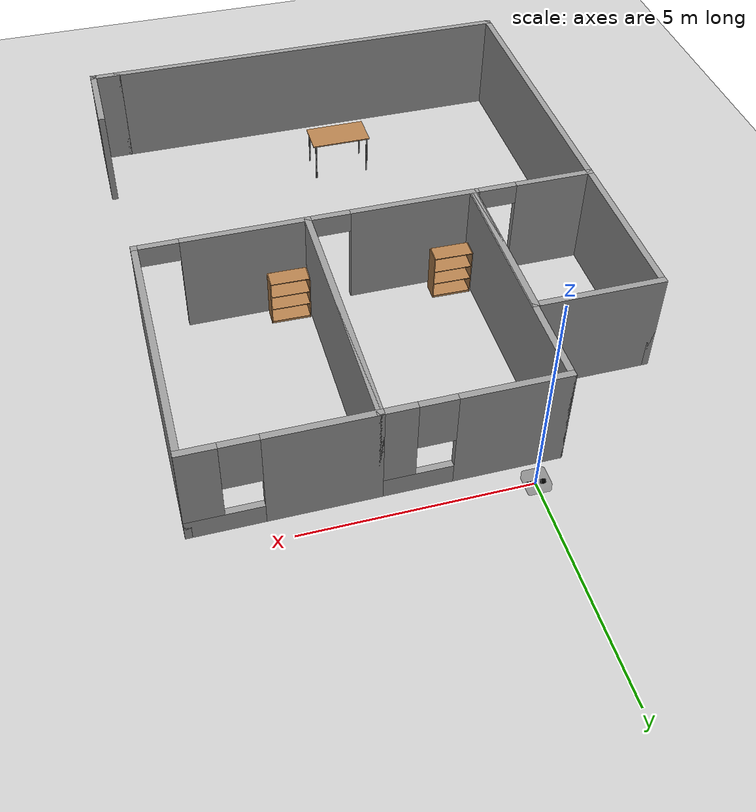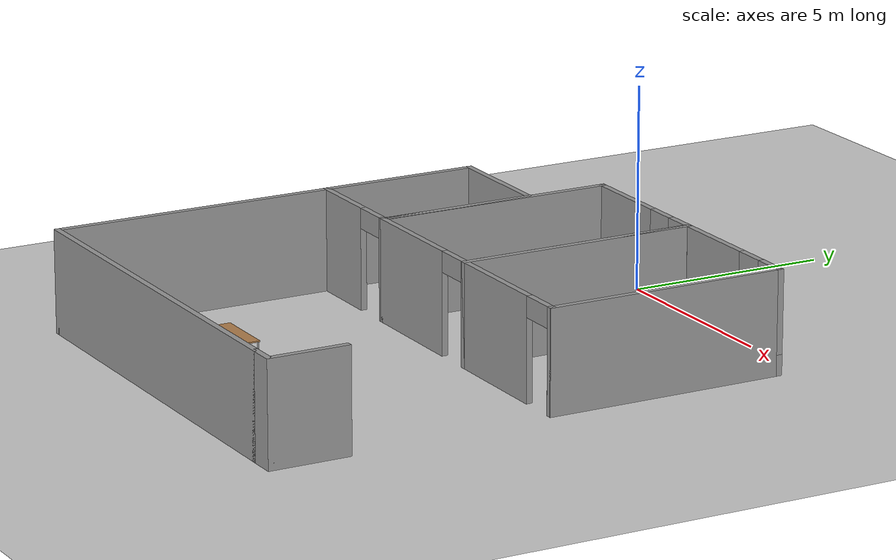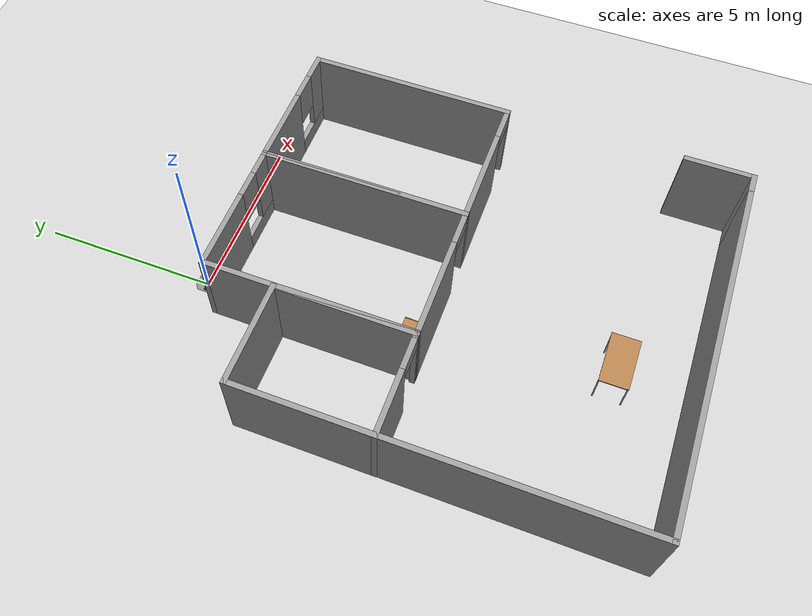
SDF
<sdf version="1.7">
 <world name="default">
  <light name="sun" type="directional">
   <pose>0 0 10 0 -0 0</pose>
   <diffuse>0.8 0.8 0.8 1</diffuse>
   <specular>0.2 0.2 0.2 1</specular>
   <attenuation>
    <range>1000</range>
    <constant>0.9</constant>
    <linear>0.01</linear>
    <quadratic>0.001</quadratic>
   </attenuation>
   <direction>-0.5 0.1 -0.9</direction>
   <spot><inner_angle>0</inner_angle><outer_angle>0</outer_angle><falloff>0</falloff></spot>
  </light>
  <model name="ground_plane">
   <static>1</static>
   <link name="link">
    <collision name="collision">
     <geometry><plane><normal>0 0 1</normal><size>100 100</size></plane></geometry>
     <surface><friction><ode><mu>100</mu><mu2>50</mu2></ode></friction></surface>
    </collision>
    <visual name="visual">
     <cast_shadows>0</cast_shadows>
     <geometry><plane><normal>0 0 1</normal><size>100 100</size></plane></geometry>
     <material>
      <script><uri>file://media/materials/scripts/gazebo.material</uri><name>Gazebo/Grey</name></script>
     </material>
    </visual>
   </link>
  </model>
  <gravity>0 0 -9.8</gravity>
  <magnetic_field>6e-06 2.3e-05 -4.2e-05</magnetic_field>
  <atmosphere type="adiabatic"/>
  <physics type="ode">
   <max_step_size>0.001</max_step_size>
   <real_time_factor>1</real_time_factor>
   <real_time_update_rate>1000</real_time_update_rate>
  </physics>
  <scene><ambient>0.4 0.4 0.4 1</ambient><background>0.7 0.7 0.7 1</background><shadows>1</shadows></scene>
  <spherical_coordinates>
   <surface_model>EARTH_WGS84</surface_model>
   <latitude_deg>0</latitude_deg>
   <longitude_deg>0</longitude_deg>
   <elevation>0</elevation>
   <heading_deg>0</heading_deg>
  </spherical_coordinates>
  <model name="room46">
   <pose>5.07987 -2.91429 0 0 -0 0</pose>
   <link name="Wall_0">
    <pose>0 2.3375 0 0 -0 0</pose>
    <visual name="Wall_0_Visual_0">
     <pose>-0.812335 0 1.25 0 -0 0</pose>
     <geometry><box><size>2.37533 0.15 2.5</size></box></geometry>
     <material>
      <script><uri>file://media/materials/scripts/gazebo.material</uri><name>Gazebo/Grey</name></script>
      <ambient>1 1 1 1</ambient>
     </material>
     <meta><layer>0</layer></meta>
    </visual>
    <collision name="Wall_0_Collision_0">
     <geometry><box><size>2.37533 0.15 2.5</size></box></geometry>
     <pose>-0.812335 0 1.25 0 -0 0</pose>
    </collision>
    <visual name="Wall_0_Visual_1">
     <pose>1.18766 0 0.25 0 -0 0</pose>
     <geometry><box><size>1.62467 0.15 0.5</size></box></geometry>
     <material>
      <script><uri>file://media/materials/scripts/gazebo.material</uri><name>Gazebo/Grey</name></script>
      <ambient>1 1 1 1</ambient>
     </material>
     <meta><layer>0</layer></meta>
    </visual>
    <collision name="Wall_0_Collision_1">
     <geometry><box><size>1.62467 0.15 0.5</size></box></geometry>
     <pose>1.18766 0 0.25 0 -0 0</pose>
    </collision>
    <visual name="Wall_0_Visual_2">
     <pose>1.58767 0 1.5 0 -0 0</pose>
     <geometry><box><size>0.82467 0.15 2</size></box></geometry>
     <material>
      <script><uri>file://media/materials/scripts/gazebo.material</uri><name>Gazebo/Grey</name></script>
      <ambient>1 1 1 1</ambient>
     </material>
     <meta><layer>0</layer></meta>
    </visual>
    <collision name="Wall_0_Collision_2">
     <geometry><box><size>0.82467 0.15 2</size></box></geometry>
     <pose>1.58767 0 1.5 0 -0 0</pose>
    </collision>
    <visual name="Wall_0_Visual_3">
     <pose>0.77533 0 1.9 0 -0 0</pose>
     <geometry><box><size>0.8 0.15 1.2</size></box></geometry>
     <material>
      <script><uri>file://media/materials/scripts/gazebo.material</uri><name>Gazebo/Grey</name></script>
      <ambient>1 1 1 1</ambient>
     </material>
     <meta><layer>0</layer></meta>
    </visual>
    <collision name="Wall_0_Collision_3">
     <geometry><box><size>0.8 0.15 1.2</size></box></geometry>
     <pose>0.77533 0 1.9 0 -0 0</pose>
    </collision>
   </link>
   <link name="Wall_3">
    <collision name="Wall_3_Collision">
     <geometry><box><size>6 0.15 2.5</size></box></geometry>
     <pose>0 0 1.25 0 -0 0</pose>
    </collision>
    <visual name="Wall_3_Visual">
     <pose>0 0 1.25 0 -0 0</pose>
     <geometry><box><size>6 0.15 2.5</size></box></geometry>
     <material>
      <script><uri>file://media/materials/scripts/gazebo.material</uri><name>Gazebo/Grey</name></script>
      <ambient>1 1 1 1</ambient>
     </material>
     <meta><layer>0</layer></meta>
    </visual>
    <pose>-1.925 -0.5875 0 0 -0 -1.5708</pose>
   </link>
   <link name="Wall_4">
    <pose>0 -3.5125 0 0 -0 0</pose>
    <visual name="Wall_4_Visual_0">
     <pose>-0.525556 0 1.25 0 -0 0</pose>
     <geometry><box><size>2.94889 0.15 2.5</size></box></geometry>
     <material>
      <script><uri>file://media/materials/scripts/gazebo.material</uri><name>Gazebo/Grey</name></script>
      <ambient>1 1 1 1</ambient>
     </material>
     <meta><layer>0</layer></meta>
    </visual>
    <collision name="Wall_4_Collision_0">
     <geometry><box><size>2.94889 0.15 2.5</size></box></geometry>
     <pose>-0.525556 0 1.25 0 -0 0</pose>
    </collision>
    <visual name="Wall_4_Visual_1">
     <pose>1.92444 0 1.25 0 -0 0</pose>
     <geometry><box><size>0.151112 0.15 2.5</size></box></geometry>
     <material>
      <script><uri>file://media/materials/scripts/gazebo.material</uri><name>Gazebo/Grey</name></script>
      <ambient>1 1 1 1</ambient>
     </material>
     <meta><layer>0</layer></meta>
    </visual>
    <collision name="Wall_4_Collision_1">
     <geometry><box><size>0.151112 0.15 2.5</size></box></geometry>
     <pose>1.92444 0 1.25 0 -0 0</pose>
    </collision>
    <visual name="Wall_4_Visual_2">
     <pose>1.39889 0 2.25 0 -0 0</pose>
     <geometry><box><size>0.9 0.15 0.5</size></box></geometry>
     <material>
      <script><uri>file://media/materials/scripts/gazebo.material</uri><name>Gazebo/Grey</name></script>
      <ambient>1 1 1 1</ambient>
     </material>
     <meta><layer>0</layer></meta>
    </visual>
    <collision name="Wall_4_Collision_2">
     <geometry><box><size>0.9 0.15 0.5</size></box></geometry>
     <pose>1.39889 0 2.25 0 -0 0</pose>
    </collision>
   </link>
   <link name="Wall_5">
    <collision name="Wall_5_Collision">
     <geometry><box><size>6 0.15 2.5</size></box></geometry>
     <pose>0 0 1.25 0 -0 0</pose>
    </collision>
    <visual name="Wall_5_Visual">
     <pose>0 0 1.25 0 -0 0</pose>
     <geometry><box><size>6 0.15 2.5</size></box></geometry>
     <material>
      <script><uri>file://media/materials/scripts/gazebo.material</uri><name>Gazebo/Grey</name></script>
      <ambient>1 1 1 1</ambient>
     </material>
     <meta><layer>0</layer></meta>
    </visual>
    <pose>1.925 -0.5875 0 0 -0 1.5708</pose>
   </link>
   <static>1</static>
  </model>
  <model name="room46_0">
   <pose>1.23244 -2.91575 0 0 -0 0</pose>
   <link name="Wall_0">
    <pose>0 2.3375 0 0 -0 0</pose>
    <visual name="Wall_0_Visual_0">
     <pose>-0.812335 0 1.25 0 -0 0</pose>
     <geometry><box><size>2.37533 0.15 2.5</size></box></geometry>
     <material>
      <script><uri>file://media/materials/scripts/gazebo.material</uri><name>Gazebo/Grey</name></script>
      <ambient>1 1 1 1</ambient>
     </material>
     <meta><layer>0</layer></meta>
    </visual>
    <collision name="Wall_0_Collision_0">
     <geometry><box><size>2.37533 0.15 2.5</size></box></geometry>
     <pose>-0.812335 0 1.25 0 -0 0</pose>
    </collision>
    <visual name="Wall_0_Visual_1">
     <pose>1.18766 0 0.25 0 -0 0</pose>
     <geometry><box><size>1.62467 0.15 0.5</size></box></geometry>
     <material>
      <script><uri>file://media/materials/scripts/gazebo.material</uri><name>Gazebo/Grey</name></script>
      <ambient>1 1 1 1</ambient>
     </material>
     <meta><layer>0</layer></meta>
    </visual>
    <collision name="Wall_0_Collision_1">
     <geometry><box><size>1.62467 0.15 0.5</size></box></geometry>
     <pose>1.18766 0 0.25 0 -0 0</pose>
    </collision>
    <visual name="Wall_0_Visual_2">
     <pose>1.58767 0 1.5 0 -0 0</pose>
     <geometry><box><size>0.82467 0.15 2</size></box></geometry>
     <material>
      <script><uri>file://media/materials/scripts/gazebo.material</uri><name>Gazebo/Grey</name></script>
      <ambient>1 1 1 1</ambient>
     </material>
     <meta><layer>0</layer></meta>
    </visual>
    <collision name="Wall_0_Collision_2">
     <geometry><box><size>0.82467 0.15 2</size></box></geometry>
     <pose>1.58767 0 1.5 0 -0 0</pose>
    </collision>
    <visual name="Wall_0_Visual_3">
     <pose>0.77533 0 1.9 0 -0 0</pose>
     <geometry><box><size>0.8 0.15 1.2</size></box></geometry>
     <material>
      <script><uri>file://media/materials/scripts/gazebo.material</uri><name>Gazebo/Grey</name></script>
      <ambient>1 1 1 1</ambient>
     </material>
     <meta><layer>0</layer></meta>
    </visual>
    <collision name="Wall_0_Collision_3">
     <geometry><box><size>0.8 0.15 1.2</size></box></geometry>
     <pose>0.77533 0 1.9 0 -0 0</pose>
    </collision>
   </link>
   <link name="Wall_3">
    <collision name="Wall_3_Collision">
     <geometry><box><size>6 0.15 2.5</size></box></geometry>
     <pose>0 0 1.25 0 -0 0</pose>
    </collision>
    <visual name="Wall_3_Visual">
     <pose>0 0 1.25 0 -0 0</pose>
     <geometry><box><size>6 0.15 2.5</size></box></geometry>
     <material>
      <script><uri>file://media/materials/scripts/gazebo.material</uri><name>Gazebo/Grey</name></script>
      <ambient>1 1 1 1</ambient>
     </material>
     <meta><layer>0</layer></meta>
    </visual>
    <pose>-1.925 -0.5875 0 0 -0 -1.5708</pose>
   </link>
   <link name="Wall_4">
    <pose>0 -3.5125 0 0 -0 0</pose>
    <visual name="Wall_4_Visual_0">
     <pose>-0.525556 0 1.25 0 -0 0</pose>
     <geometry><box><size>2.94889 0.15 2.5</size></box></geometry>
     <material>
      <script><uri>file://media/materials/scripts/gazebo.material</uri><name>Gazebo/Grey</name></script>
      <ambient>1 1 1 1</ambient>
     </material>
     <meta><layer>0</layer></meta>
    </visual>
    <collision name="Wall_4_Collision_0">
     <geometry><box><size>2.94889 0.15 2.5</size></box></geometry>
     <pose>-0.525556 0 1.25 0 -0 0</pose>
    </collision>
    <visual name="Wall_4_Visual_1">
     <pose>1.92444 0 1.25 0 -0 0</pose>
     <geometry><box><size>0.151112 0.15 2.5</size></box></geometry>
     <material>
      <script><uri>file://media/materials/scripts/gazebo.material</uri><name>Gazebo/Grey</name></script>
      <ambient>1 1 1 1</ambient>
     </material>
     <meta><layer>0</layer></meta>
    </visual>
    <collision name="Wall_4_Collision_1">
     <geometry><box><size>0.151112 0.15 2.5</size></box></geometry>
     <pose>1.92444 0 1.25 0 -0 0</pose>
    </collision>
    <visual name="Wall_4_Visual_2">
     <pose>1.39889 0 2.25 0 -0 0</pose>
     <geometry><box><size>0.9 0.15 0.5</size></box></geometry>
     <material>
      <script><uri>file://media/materials/scripts/gazebo.material</uri><name>Gazebo/Grey</name></script>
      <ambient>1 1 1 1</ambient>
     </material>
     <meta><layer>0</layer></meta>
    </visual>
    <collision name="Wall_4_Collision_2">
     <geometry><box><size>0.9 0.15 0.5</size></box></geometry>
     <pose>1.39889 0 2.25 0 -0 0</pose>
    </collision>
   </link>
   <link name="Wall_5">
    <collision name="Wall_5_Collision">
     <geometry><box><size>6 0.15 2.5</size></box></geometry>
     <pose>0 0 1.25 0 -0 0</pose>
    </collision>
    <visual name="Wall_5_Visual">
     <pose>0 0 1.25 0 -0 0</pose>
     <geometry><box><size>6 0.15 2.5</size></box></geometry>
     <material>
      <script><uri>file://media/materials/scripts/gazebo.material</uri><name>Gazebo/Grey</name></script>
      <ambient>1 1 1 1</ambient>
     </material>
     <meta><layer>0</layer></meta>
    </visual>
    <pose>1.925 -0.5875 0 0 -0 1.5708</pose>
   </link>
   <static>1</static>
  </model>
  <model name="room">
   <pose>-1.94135 -4.04708 0 0 -0 0</pose>
   <link name="Wall_0">
    <collision name="Wall_0_Collision">
     <geometry><box><size>3 0.15 2.5</size></box></geometry>
     <pose>0 0 1.25 0 -0 0</pose>
    </collision>
    <visual name="Wall_0_Visual">
     <pose>0 0 1.25 0 -0 0</pose>
     <geometry><box><size>3 0.15 2.5</size></box></geometry>
     <material>
      <script><uri>file://media/materials/scripts/gazebo.material</uri><name>Gazebo/Grey</name></script>
      <ambient>1 1 1 1</ambient>
     </material>
     <meta><layer>0</layer></meta>
    </visual>
    <pose>-0.2025 1.4725 0 0 -0 0</pose>
   </link>
   <link name="Wall_1">
    <collision name="Wall_1_Collision">
     <geometry><box><size>4 0.15 2.5</size></box></geometry>
     <pose>0 0 1.25 0 -0 0</pose>
    </collision>
    <visual name="Wall_1_Visual">
     <pose>0 0 1.25 0 -0 0</pose>
     <geometry><box><size>4 0.15 2.5</size></box></geometry>
     <material>
      <script><uri>file://media/materials/scripts/gazebo.material</uri><name>Gazebo/Grey</name></script>
      <ambient>1 1 1 1</ambient>
     </material>
     <meta><layer>0</layer></meta>
    </visual>
    <pose>1.2225 -0.4525 0 0 -0 -1.5708</pose>
   </link>
   <link name="Wall_2">
    <pose>-0.2025 -2.3775 0 0 -0 3.14159</pose>
    <visual name="Wall_2_Visual_0">
     <pose>-1.3975 0 1.25 0 -0 0</pose>
     <geometry><box><size>0.205 0.15 2.5</size></box></geometry>
     <material>
      <script><uri>file://media/materials/scripts/gazebo.material</uri><name>Gazebo/Grey</name></script>
      <ambient>1 1 1 1</ambient>
     </material>
     <meta><layer>0</layer></meta>
    </visual>
    <collision name="Wall_2_Collision_0">
     <geometry><box><size>0.205 0.15 2.5</size></box></geometry>
     <pose>-1.3975 0 1.25 0 -0 0</pose>
    </collision>
    <visual name="Wall_2_Visual_1">
     <pose>0.5525 0 1.25 0 -0 0</pose>
     <geometry><box><size>1.895 0.15 2.5</size></box></geometry>
     <material>
      <script><uri>file://media/materials/scripts/gazebo.material</uri><name>Gazebo/Grey</name></script>
      <ambient>1 1 1 1</ambient>
     </material>
     <meta><layer>0</layer></meta>
    </visual>
    <collision name="Wall_2_Collision_1">
     <geometry><box><size>1.895 0.15 2.5</size></box></geometry>
     <pose>0.5525 0 1.25 0 -0 0</pose>
    </collision>
    <visual name="Wall_2_Visual_2">
     <pose>-0.845 0 2.25 0 -0 0</pose>
     <geometry><box><size>0.9 0.15 0.5</size></box></geometry>
     <material>
      <script><uri>file://media/materials/scripts/gazebo.material</uri><name>Gazebo/Grey</name></script>
      <ambient>1 1 1 1</ambient>
     </material>
     <meta><layer>0</layer></meta>
    </visual>
    <collision name="Wall_2_Collision_2">
     <geometry><box><size>0.9 0.15 0.5</size></box></geometry>
     <pose>-0.845 0 2.25 0 -0 0</pose>
    </collision>
   </link>
   <link name="Wall_3">
    <collision name="Wall_3_Collision">
     <geometry><box><size>4 0.15 2.5</size></box></geometry>
     <pose>0 0 1.25 0 -0 0</pose>
    </collision>
    <visual name="Wall_3_Visual">
     <pose>0 0 1.25 0 -0 0</pose>
     <geometry><box><size>4 0.15 2.5</size></box></geometry>
     <material>
      <script><uri>file://media/materials/scripts/gazebo.material</uri><name>Gazebo/Grey</name></script>
      <ambient>1 1 1 1</ambient>
     </material>
     <meta><layer>0</layer></meta>
    </visual>
    <pose>-1.6275 -0.4525 0 0 -0 1.5708</pose>
   </link>
   <static>1</static>
  </model>
  <model name="Table">
   <static>1</static>
   <link name="link">
    <collision name="surface">
     <pose>0 0 1 0 -0 0</pose>
     <geometry><box><size>1.5 0.8 0.03</size></box></geometry>
     <surface><friction><ode><mu>0.6</mu><mu2>0.6</mu2></ode></friction></surface>
    </collision>
    <visual name="visual1">
     <pose>0 0 1 0 -0 0</pose>
     <geometry><box><size>1.5 0.8 0.03</size></box></geometry>
     <material>
      <diffuse>1 1 1 1</diffuse>
      <script><uri>file://media/materials/scripts/gazebo.material</uri><name>Gazebo/Wood</name></script>
      <pbr>
       <metal>
        <albedo_map>https://fuel.ignitionrobotics.org/1.0/openrobotics/models/table/3/files/Table_Diffuse.jpg</albedo_map>
       </metal>
      </pbr>
     </material>
    </visual>
    <collision name="front_left_leg">
     <pose>0.68 0.38 0.5 0 -0 0</pose>
     <geometry><cylinder><radius>0.02</radius><length>1</length></cylinder></geometry>
    </collision>
    <visual name="front_left_leg">
     <pose>0.68 0.38 0.5 0 -0 0</pose>
     <geometry><cylinder><radius>0.02</radius><length>1</length></cylinder></geometry>
     <material>
      <diffuse>0.5 0.5 0.5 1</diffuse>
      <script><uri>file://media/materials/scripts/gazebo.material</uri><name>Gazebo/Grey</name></script>
     </material>
    </visual>
    <collision name="front_right_leg">
     <pose>0.68 -0.38 0.5 0 -0 0</pose>
     <geometry><cylinder><radius>0.02</radius><length>1</length></cylinder></geometry>
    </collision>
    <visual name="front_right_leg">
     <pose>0.68 -0.38 0.5 0 -0 0</pose>
     <geometry><cylinder><radius>0.02</radius><length>1</length></cylinder></geometry>
     <material>
      <diffuse>0.5 0.5 0.5 1</diffuse>
      <script><uri>file://media/materials/scripts/gazebo.material</uri><name>Gazebo/Grey</name></script>
     </material>
    </visual>
    <collision name="back_right_leg">
     <pose>-0.68 -0.38 0.5 0 -0 0</pose>
     <geometry><cylinder><radius>0.02</radius><length>1</length></cylinder></geometry>
    </collision>
    <visual name="back_right_leg">
     <pose>-0.68 -0.38 0.5 0 -0 0</pose>
     <geometry><cylinder><radius>0.02</radius><length>1</length></cylinder></geometry>
     <material>
      <diffuse>0.5 0.5 0.5 1</diffuse>
      <script><uri>file://media/materials/scripts/gazebo.material</uri><name>Gazebo/Grey</name></script>
     </material>
    </visual>
    <collision name="back_left_leg">
     <pose>-0.68 0.38 0.5 0 -0 0</pose>
     <geometry><cylinder><radius>0.02</radius><length>1</length></cylinder></geometry>
    </collision>
    <visual name="back_left_leg">
     <pose>-0.68 0.38 0.5 0 -0 0</pose>
     <geometry><cylinder><radius>0.02</radius><length>1</length></cylinder></geometry>
     <material>
      <diffuse>0.5 0.5 0.5 1</diffuse>
      <script><uri>file://media/materials/scripts/gazebo.material</uri><name>Gazebo/Grey</name></script>
     </material>
    </visual>
   </link>
   <pose>1.18939 -11.383 0 0 -0 0</pose>
  </model>
  <model name="Bookshelf">
   <static>1</static>
   <link name="link">
    <inertial><mass>1</mass></inertial>
    <collision name="back">
     <pose>0 0.005 0.6 0 -0 0</pose>
     <geometry><box><size>0.9 0.01 1.2</size></box></geometry>
    </collision>
    <visual name="visual1">
     <pose>0 0.005 0.6 0 -0 0</pose>
     <geometry><box><size>0.9 0.01 1.2</size></box></geometry>
     <material>
      <diffuse>1 1 1 1</diffuse>
      <script><uri>file://media/materials/scripts/gazebo.material</uri><name>Gazebo/Wood</name></script>
      <pbr>
       <metal>
        <albedo_map>https://fuel.ignitionrobotics.org/1.0/openrobotics/models/bookshelf/3/files/bookshelf_diffuse.jpg</albedo_map>
       </metal>
      </pbr>
     </material>
    </visual>
    <collision name="left_side">
     <pose>0.45 -0.195 0.6 0 -0 0</pose>
     <geometry><box><size>0.02 0.4 1.2</size></box></geometry>
    </collision>
    <visual name="visual2">
     <pose>0.45 -0.195 0.6 0 -0 0</pose>
     <geometry><box><size>0.02 0.4 1.2</size></box></geometry>
     <material>
      <diffuse>1 1 1 1</diffuse>
      <script><uri>file://media/materials/scripts/gazebo.material</uri><name>Gazebo/Wood</name></script>
      <pbr>
       <metal>
        <albedo_map>https://fuel.ignitionrobotics.org/1.0/openrobotics/models/bookshelf/3/files/bookshelf_diffuse.jpg</albedo_map>
       </metal>
      </pbr>
     </material>
    </visual>
    <collision name="right_side">
     <pose>-0.45 -0.195 0.6 0 -0 0</pose>
     <geometry><box><size>0.02 0.4 1.2</size></box></geometry>
    </collision>
    <visual name="visual3">
     <pose>-0.45 -0.195 0.6 0 -0 0</pose>
     <geometry><box><size>0.02 0.4 1.2</size></box></geometry>
     <material>
      <diffuse>1 1 1 1</diffuse>
      <script><uri>file://media/materials/scripts/gazebo.material</uri><name>Gazebo/Wood</name></script>
      <pbr>
       <metal>
        <albedo_map>https://fuel.ignitionrobotics.org/1.0/openrobotics/models/bookshelf/3/files/bookshelf_diffuse.jpg</albedo_map>
       </metal>
      </pbr>
     </material>
    </visual>
    <collision name="bottom">
     <pose>0 -0.195 0.03 0 -0 0</pose>
     <geometry><box><size>0.88 0.4 0.06</size></box></geometry>
    </collision>
    <visual name="visual4">
     <pose>0 -0.195 0.03 0 -0 0</pose>
     <geometry><box><size>0.88 0.4 0.06</size></box></geometry>
     <material>
      <diffuse>1 1 1 1</diffuse>
      <script><uri>file://media/materials/scripts/gazebo.material</uri><name>Gazebo/Wood</name></script>
      <pbr>
       <metal>
        <albedo_map>https://fuel.ignitionrobotics.org/1.0/openrobotics/models/bookshelf/3/files/bookshelf_diffuse.jpg</albedo_map>
       </metal>
      </pbr>
     </material>
    </visual>
    <collision name="top">
     <pose>0 -0.195 1.19 0 -0 0</pose>
     <geometry><box><size>0.88 0.4 0.02</size></box></geometry>
    </collision>
    <visual name="visual5">
     <pose>0 -0.195 1.19 0 -0 0</pose>
     <geometry><box><size>0.88 0.4 0.02</size></box></geometry>
     <material>
      <diffuse>1 1 1 1</diffuse>
      <script><uri>file://media/materials/scripts/gazebo.material</uri><name>Gazebo/Wood</name></script>
      <pbr>
       <metal>
        <albedo_map>https://fuel.ignitionrobotics.org/1.0/openrobotics/models/bookshelf/3/files/bookshelf_diffuse.jpg</albedo_map>
       </metal>
      </pbr>
     </material>
    </visual>
    <collision name="low_shelf">
     <pose>0 -0.195 0.43 0 -0 0</pose>
     <geometry><box><size>0.88 0.4 0.02</size></box></geometry>
    </collision>
    <visual name="visual6">
     <pose>0 -0.195 0.43 0 -0 0</pose>
     <geometry><box><size>0.88 0.4 0.02</size></box></geometry>
     <material>
      <diffuse>1 1 1 1</diffuse>
      <script><uri>file://media/materials/scripts/gazebo.material</uri><name>Gazebo/Wood</name></script>
      <pbr>
       <metal>
        <albedo_map>https://fuel.ignitionrobotics.org/1.0/openrobotics/models/bookshelf/3/files/bookshelf_diffuse.jpg</albedo_map>
       </metal>
      </pbr>
     </material>
    </visual>
    <collision name="high_shelf">
     <pose>0 -0.195 0.8 0 -0 0</pose>
     <geometry><box><size>0.88 0.4 0.02</size></box></geometry>
    </collision>
    <visual name="visual7">
     <pose>0 -0.195 0.8 0 -0 0</pose>
     <geometry><box><size>0.88 0.4 0.02</size></box></geometry>
     <material>
      <diffuse>1 1 1 1</diffuse>
      <script><uri>file://media/materials/scripts/gazebo.material</uri><name>Gazebo/Wood</name></script>
      <pbr>
       <metal>
        <albedo_map>https://fuel.ignitionrobotics.org/1.0/openrobotics/models/bookshelf/3/files/bookshelf_diffuse.jpg</albedo_map>
       </metal>
      </pbr>
     </material>
    </visual>
   </link>
   <pose>-0.132493 -6.17476 0 0 -0 3.12322</pose>
  </model>
  <model name="Bookshelf_clone">
   <static>1</static>
   <link name="link">
    <inertial><mass>1</mass></inertial>
    <collision name="back">
     <pose>0 0.005 0.6 0 -0 0</pose>
     <geometry><box><size>0.9 0.01 1.2</size></box></geometry>
    </collision>
    <visual name="visual1">
     <pose>0 0.005 0.6 0 -0 0</pose>
     <geometry><box><size>0.9 0.01 1.2</size></box></geometry>
     <material>
      <diffuse>1 1 1 1</diffuse>
      <script><uri>file://media/materials/scripts/gazebo.material</uri><name>Gazebo/Wood</name></script>
      <pbr>
       <metal>
        <albedo_map>https://fuel.ignitionrobotics.org/1.0/openrobotics/models/bookshelf/3/files/bookshelf_diffuse.jpg</albedo_map>
       </metal>
      </pbr>
     </material>
    </visual>
    <collision name="left_side">
     <pose>0.45 -0.195 0.6 0 -0 0</pose>
     <geometry><box><size>0.02 0.4 1.2</size></box></geometry>
    </collision>
    <visual name="visual2">
     <pose>0.45 -0.195 0.6 0 -0 0</pose>
     <geometry><box><size>0.02 0.4 1.2</size></box></geometry>
     <material>
      <diffuse>1 1 1 1</diffuse>
      <script><uri>file://media/materials/scripts/gazebo.material</uri><name>Gazebo/Wood</name></script>
      <pbr>
       <metal>
        <albedo_map>https://fuel.ignitionrobotics.org/1.0/openrobotics/models/bookshelf/3/files/bookshelf_diffuse.jpg</albedo_map>
       </metal>
      </pbr>
     </material>
    </visual>
    <collision name="right_side">
     <pose>-0.45 -0.195 0.6 0 -0 0</pose>
     <geometry><box><size>0.02 0.4 1.2</size></box></geometry>
    </collision>
    <visual name="visual3">
     <pose>-0.45 -0.195 0.6 0 -0 0</pose>
     <geometry><box><size>0.02 0.4 1.2</size></box></geometry>
     <material>
      <diffuse>1 1 1 1</diffuse>
      <script><uri>file://media/materials/scripts/gazebo.material</uri><name>Gazebo/Wood</name></script>
      <pbr>
       <metal>
        <albedo_map>https://fuel.ignitionrobotics.org/1.0/openrobotics/models/bookshelf/3/files/bookshelf_diffuse.jpg</albedo_map>
       </metal>
      </pbr>
     </material>
    </visual>
    <collision name="bottom">
     <pose>0 -0.195 0.03 0 -0 0</pose>
     <geometry><box><size>0.88 0.4 0.06</size></box></geometry>
    </collision>
    <visual name="visual4">
     <pose>0 -0.195 0.03 0 -0 0</pose>
     <geometry><box><size>0.88 0.4 0.06</size></box></geometry>
     <material>
      <diffuse>1 1 1 1</diffuse>
      <script><uri>file://media/materials/scripts/gazebo.material</uri><name>Gazebo/Wood</name></script>
      <pbr>
       <metal>
        <albedo_map>https://fuel.ignitionrobotics.org/1.0/openrobotics/models/bookshelf/3/files/bookshelf_diffuse.jpg</albedo_map>
       </metal>
      </pbr>
     </material>
    </visual>
    <collision name="top">
     <pose>0 -0.195 1.19 0 -0 0</pose>
     <geometry><box><size>0.88 0.4 0.02</size></box></geometry>
    </collision>
    <visual name="visual5">
     <pose>0 -0.195 1.19 0 -0 0</pose>
     <geometry><box><size>0.88 0.4 0.02</size></box></geometry>
     <material>
      <diffuse>1 1 1 1</diffuse>
      <script><uri>file://media/materials/scripts/gazebo.material</uri><name>Gazebo/Wood</name></script>
      <pbr>
       <metal>
        <albedo_map>https://fuel.ignitionrobotics.org/1.0/openrobotics/models/bookshelf/3/files/bookshelf_diffuse.jpg</albedo_map>
       </metal>
      </pbr>
     </material>
    </visual>
    <collision name="low_shelf">
     <pose>0 -0.195 0.43 0 -0 0</pose>
     <geometry><box><size>0.88 0.4 0.02</size></box></geometry>
    </collision>
    <visual name="visual6">
     <pose>0 -0.195 0.43 0 -0 0</pose>
     <geometry><box><size>0.88 0.4 0.02</size></box></geometry>
     <material>
      <diffuse>1 1 1 1</diffuse>
      <script><uri>file://media/materials/scripts/gazebo.material</uri><name>Gazebo/Wood</name></script>
      <pbr>
       <metal>
        <albedo_map>https://fuel.ignitionrobotics.org/1.0/openrobotics/models/bookshelf/3/files/bookshelf_diffuse.jpg</albedo_map>
       </metal>
      </pbr>
     </material>
    </visual>
    <collision name="high_shelf">
     <pose>0 -0.195 0.8 0 -0 0</pose>
     <geometry><box><size>0.88 0.4 0.02</size></box></geometry>
    </collision>
    <visual name="visual7">
     <pose>0 -0.195 0.8 0 -0 0</pose>
     <geometry><box><size>0.88 0.4 0.02</size></box></geometry>
     <material>
      <diffuse>1 1 1 1</diffuse>
      <script><uri>file://media/materials/scripts/gazebo.material</uri><name>Gazebo/Wood</name></script>
      <pbr>
       <metal>
        <albedo_map>https://fuel.ignitionrobotics.org/1.0/openrobotics/models/bookshelf/3/files/bookshelf_diffuse.jpg</albedo_map>
       </metal>
      </pbr>
     </material>
    </visual>
   </link>
   <pose>3.70483 -6.30006 0 0 -0 3.12322</pose>
  </model>
  <model name="wall">
   <pose>1.78751 -8.76188 0 0 -0 0</pose>
   <link name="Wall_1">
    <collision name="Wall_1_Collision">
     <geometry><box><size>7 0.15 2.5</size></box></geometry>
     <pose>0 0 1.25 0 -0 0</pose>
    </collision>
    <visual name="Wall_1_Visual">
     <pose>0 0 1.25 0 -0 0</pose>
     <geometry><box><size>7 0.15 2.5</size></box></geometry>
     <material>
      <script><uri>file://media/materials/scripts/gazebo.material</uri><name>Gazebo/Grey</name></script>
      <ambient>1 1 1 1</ambient>
     </material>
     <meta><layer>0</layer></meta>
    </visual>
    <pose>-5.35 -1.18692 0 0 -0 -1.5708</pose>
   </link>
   <link name="Wall_13">
    <collision name="Wall_13_Collision">
     <geometry><box><size>2 0.15 2.5</size></box></geometry>
     <pose>0 0 1.25 0 -0 0</pose>
    </collision>
    <visual name="Wall_13_Visual">
     <pose>0 0 1.25 0 -0 0</pose>
     <geometry><box><size>2 0.15 2.5</size></box></geometry>
     <material>
      <script><uri>file://media/materials/scripts/gazebo.material</uri><name>Gazebo/Grey</name></script>
      <ambient>1 1 1 1</ambient>
     </material>
     <meta><layer>0</layer></meta>
    </visual>
    <pose>5.35 -3.68692 0 0 -0 1.5708</pose>
   </link>
   <link name="Wall_3">
    <collision name="Wall_3_Collision">
     <geometry><box><size>10.25 0.15 2.5</size></box></geometry>
     <pose>0 0 1.25 0 -0 0</pose>
    </collision>
    <visual name="Wall_3_Visual">
     <pose>0 0 1.25 0 -0 0</pose>
     <geometry><box><size>10.25 0.15 2.5</size></box></geometry>
     <material>
      <script><uri>file://media/materials/scripts/gazebo.material</uri><name>Gazebo/Grey</name></script>
      <ambient>1 1 1 1</ambient>
     </material>
     <meta><layer>0</layer></meta>
    </visual>
    <pose>-0.3 -4.61192 0 0 -0 0</pose>
   </link>
   <link name="Wall_4">
    <collision name="Wall_4_Collision">
     <geometry><box><size>0.15 0.15 2.5</size></box></geometry>
     <pose>0 0 1.25 0 -0 0</pose>
    </collision>
    <visual name="Wall_4_Visual">
     <pose>0 0 1.25 0 -0 0</pose>
     <geometry><box><size>0.15 0.15 2.5</size></box></geometry>
     <material>
      <script><uri>file://media/materials/scripts/gazebo.material</uri><name>Gazebo/Grey</name></script>
      <ambient>1 1 1 1</ambient>
     </material>
     <meta><layer>0</layer></meta>
    </visual>
    <pose>4.75 -4.61192 0 0 -0 0</pose>
   </link>
   <link name="Wall_5">
    <collision name="Wall_5_Collision">
     <geometry><box><size>0.75 0.15 2.5</size></box></geometry>
     <pose>0 0 1.25 0 -0 0</pose>
    </collision>
    <visual name="Wall_5_Visual">
     <pose>0 0 1.25 0 -0 0</pose>
     <geometry><box><size>0.75 0.15 2.5</size></box></geometry>
     <material>
      <script><uri>file://media/materials/scripts/gazebo.material</uri><name>Gazebo/Grey</name></script>
      <ambient>1 1 1 1</ambient>
     </material>
     <meta><layer>0</layer></meta>
    </visual>
    <pose>5.05 -4.61192 0 0 -0 0</pose>
   </link>
   <static>1</static>
  </model>
  <include><uri>model://first_model</uri></include>
 </world>
</sdf>

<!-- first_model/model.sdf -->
<sdf version="1.7">

  <model name='Ummannd_Car'>
  <static>false</static>

  <link name='car'>

    <inertial>
      <mass>15</mass>
      <inertia>
        <ixx>0.126164</ixx>
        <ixy>0</ixy>
        <ixz>0</ixz>
        <iyy>0.416519</iyy>
        <iyz>0</iyz>
        <izz>0.481014</izz>
        </inertia>
    </inertial>

    <pose>0 0 0.02 0 0 0</pose>

    <collision name='car_collision'>

      <geometry>
        <mesh>
          <uri>model://first_model/meshes/body.dae</uri>
          <scale>1 1 1</scale>
        </mesh>
      </geometry>

    </collision>

    <visual name='car_visual'>

      <geometry>
        <mesh>
          <uri>model://first_model/meshes/body.dae</uri>
          <scale>1 1 1</scale>
        </mesh>
      </geometry>

      <material>
        <ambient>0 0 0 0.1</ambient>
        <diffuse>0 0 0 0.3</diffuse>
        <specular>0 0 0 0</specular>
        <emissive>0 0 0 0</emissive>
      </material>

    </visual>

  </link>

  <link name='back_left_wheel'>

    <inertial>
      <mass>1</mass>
      <inertia>
        <ixx>0.145833</ixx>
        <ixy>0</ixy>
        <ixz>0</ixz>
        <iyy>0.145833</iyy>
        <iyz>0</iyz>
        <izz>0.125</izz>
      </inertia>
    </inertial>

    <collision name='back_left_wheel_collision'>

      <pose>-0.15 -0.15 0 0 0 1.5708</pose>

      <geometry>
        <mesh>
          <uri>model://first_model/meshes/wheel.dae</uri>
          <scale>1 1 1</scale>>
        </mesh>
      </geometry>

    <surface>

      <friction>
        <ode>
          <mu>1</mu>
          <mu2>1</mu2>
          <slip1>0</slip1>
          <slip2>0</slip2>
        </ode>
      </friction>

      <contact>
        <ode>
          <soft_cfm>0</soft_cfm>
          <soft_erp>0.2</soft_erp>
          <kp>1e+13</kp>
          <kd>1</kd>
          <max_vel>0.01</max_vel>
          <min_depth>0.01</min_depth>
        </ode>
      </contact>

    </surface>

    </collision>

    <visual name='back_left_visual'>

      <pose>-0.15 -0.15 0 0 0 1.5708</pose>

      <geometry>
        <mesh>
          <uri>model://first_model/meshes/wheel.dae</uri>
          <scale>1 1 1</scale>>
        </mesh>
      </geometry>

      <material>
        <ambient>0 0 0 1</ambient>
        <diffuse>0 0 0 0.3</diffuse>
        <specular>0 0 0 0.3</specular>
        <emissive>0.3 0 0 0.3</emissive>
      </material>

    </visual>
  </link>

  <link name='back_right_wheel'>

    <inertial>
      <mass>1</mass>
      <inertia>
        <ixx>0.145833</ixx>
        <ixy>0</ixy>
        <ixz>0</ixz>
        <iyy>0.145833</iyy>
        <iyz>0</iyz>
        <izz>0.125</izz>
      </inertia>
    </inertial>

    <collision name='back_right_wheel_collision'>

      <pose>0.15 -0.15 0 0 0 1.5708</pose>

      <geometry>
        <mesh>
          <uri>model://first_model/meshes/wheel.dae</uri>
          <scale>1 1 1</scale>>
        </mesh>
      </geometry>

      <surface>

        <friction>
          <ode>
            <mu>1</mu>
            <mu2>1</mu2>
            <slip1>0</slip1>
            <slip2>0</slip2>
          </ode>
        </friction>

        <contact>
          <ode>
            <soft_cfm>0</soft_cfm>
            <soft_erp>0.2</soft_erp>
            <kp>1e+13</kp>
            <kd>1</kd>
            <max_vel>0.01</max_vel>
            <min_depth>0.01</min_depth>
          </ode>
        </contact>

      </surface>

    </collision>

    <visual name='back_right_visual'>

      <pose>0.15 -0.15 0 0 0 1.5708</pose>

      <geometry>
        <mesh>
          <uri>model://first_model/meshes/wheel.dae</uri>
          <scale>1 1 1</scale>>
        </mesh>
      </geometry>

      <material>
        <ambient>0 0 0 1</ambient>
        <diffuse>0 0 0 0.3</diffuse>
        <specular>0 0 0 0.3</specular>
        <emissive>0.3 0 0 0.3</emissive>
      </material>

    </visual>

  </link>

  <link name='front_left_wheel'>

    <inertial>
      <mass>1</mass>
      <inertia>
        <ixx>0.145833</ixx>
        <ixy>0</ixy>
        <ixz>0</ixz>
        <iyy>0.145833</iyy>
        <iyz>0</iyz>
        <izz>0.125</izz>
      </inertia>
    </inertial>

    <collision name='front_left_wheel_collision'>

      <pose>-0.15 0.15 0 0 0 1.5708</pose>

      <geometry>
        <mesh>
          <uri>model://first_model/meshes/wheel.dae</uri>
          <scale>1 1 1</scale>>
        </mesh>
      </geometry>

      <surface>

        <friction>
          <ode>
            <mu>1</mu>
            <mu2>1</mu2>
            <slip1>0</slip1>
            <slip2>0</slip2>
          </ode>
        </friction>

        <contact>
          <ode>
            <soft_cfm>0</soft_cfm>
            <soft_erp>0.2</soft_erp>
            <kp>1e+13</kp>
            <kd>1</kd>
            <max_vel>0.01</max_vel>
            <min_depth>0.01</min_depth>
          </ode>
        </contact>

      </surface>

    </collision>

    <visual name='front_left_visual'>

      <pose>-0.15 0.15 0 0 0 1.5708</pose>

      <geometry>
        <mesh>
          <uri>model://first_model/meshes/wheel.dae</uri>
          <scale>1 1 1</scale>>
        </mesh>
      </geometry>

      <material>
        <ambient>0 0 0 1</ambient>
        <diffuse>0 0 0 0.3</diffuse>
        <specular>0 0 0 0.3</specular>
        <emissive>0.3 0 0 0.3</emissive>
      </material>

    </visual>

  </link>

  <link name='front_right_wheel'>

    <inertial>
      <mass>1</mass>
      <inertia>
        <ixx>0.145833</ixx>
        <ixy>0</ixy>
        <ixz>0</ixz>
        <iyy>0.145833</iyy>
        <iyz>0</iyz>
        <izz>0.125</izz>
      </inertia>
    </inertial>

    <collision name='front_right_wheel_collision'>

      <pose>0.15 0.15 0 0 0 1.5708</pose>

      <geometry>
        <mesh>
          <uri>model://first_model/meshes/wheel.dae</uri>
          <scale>1 1 1</scale>>
        </mesh>
      </geometry>

      <surface>

        <friction>
          <ode>
            <mu>1</mu>
            <mu2>1</mu2>
            <slip1>0</slip1>
            <slip2>0</slip2>
          </ode>
        </friction>

        <contact>
          <ode>
            <soft_cfm>0</soft_cfm>
            <soft_erp>0.2</soft_erp>
            <kp>1e+13</kp>
            <kd>1</kd>
            <max_vel>0.01</max_vel>
            <min_depth>0.01</min_depth>
          </ode>
        </contact>

      </surface>

    </collision>

    <visual name='front_right_visual'>

      <pose>0.15 0.15 0 0 0 1.5708</pose>

      <geometry>
        <mesh>
          <uri>model://first_model/meshes/wheel.dae</uri>
          <scale>1 1 1</scale>>
        </mesh>
      </geometry>

      <material>
        <ambient>0 0 0 1</ambient>
        <diffuse>0 0 0 0.3</diffuse>
        <specular>0 0 0 0.3</specular>
        <emissive>0.3 0 0 0.3</emissive>
      </material>

    </visual>

  </link>

  <!-- Rotate link -->
  <link name='rotate_left_wheel'>

    <pose>-0.15 0 0.05 0 1.5708 0</pose>

    <inertial>
      <mass>1</mass>
      <inertia>
        <ixx>0.145833</ixx>
        <ixy>0</ixy>
        <ixz>0</ixz>
        <iyy>0.145833</iyy>
        <iyz>0</iyz>
        <izz>0.125</izz>
      </inertia>
    </inertial>

    <collision name='rotate_left__wheel_collision'>

      <geometry>
        <cylinder>
          <radius>0.05</radius>
          <length>0.1</length>
        </cylinder>
      </geometry>

      <surface>

        <friction>
          <ode>
            <mu>1</mu>
            <mu2>1</mu2>
            <slip1>0</slip1>
            <slip2>0</slip2>
          </ode>
        </friction>

        <contact>
          <ode>
            <soft_cfm>0</soft_cfm>
            <soft_erp>0.2</soft_erp>
            <kp>1e+13</kp>
            <kd>1</kd>
            <max_vel>0.05</max_vel>
            <min_depth>0.01</min_depth>
          </ode>
        </contact>

      </surface>

    </collision>

    <visual name='rotate_left_wheel_visual'>

      <geometry>
        <cylinder>
          <radius>0.05</radius>
          <length>0.1</length>
        </cylinder>
      </geometry>

      <material>
        <ambient>0 0 0 0</ambient>
        <diffuse>0 0 0 0</diffuse>
        <specular>0 0 0 0</specular>
        <emissive>0 0 0 0</emissive>
      </material>

    </visual>

  </link>

  <link name='rotate_right_wheel'>

    <pose>0.15 0 0.05 0 1.5708 0</pose>

    <inertial>
      <mass>1</mass>
      <inertia>
        <ixx>0.145833</ixx>
        <ixy>0</ixy>
        <ixz>0</ixz>
        <iyy>0.145833</iyy>
        <iyz>0</iyz>
        <izz>0.125</izz>
      </inertia>
    </inertial>

    <collision name='rotate_right__wheel_collision'>

      <geometry>
        <cylinder>
          <radius>0.05</radius>
          <length>0.1</length>
        </cylinder>
      </geometry>

      <surface>

        <friction>
          <ode>
            <mu>1</mu>
            <mu2>1</mu2>
            <slip1>0</slip1>
            <slip2>0</slip2>
          </ode>
        </friction>

        <contact>
          <ode>
            <soft_cfm>0</soft_cfm>
            <soft_erp>0.2</soft_erp>
            <kp>1e+13</kp>
            <kd>1</kd>
            <max_vel>0.01</max_vel>
            <min_depth>0.01</min_depth>
          </ode>
        </contact>

      </surface>

    </collision>

    <visual name='rotate_right_wheel_visual'>

      <geometry>
        <cylinder>
          <radius>0.05</radius>
          <length>0.1</length>
        </cylinder>
      </geometry>

      <material>
        <ambient>0 0 0 0</ambient>
        <diffuse>0 0 0 0</diffuse>
        <specular>0 0 0 0</specular>
        <emissive>0 0 0 0</emissive>
      </material>

    </visual>

  </link>

  <joint name='back_left_wheel_joint' type='fixed'>

    <parent>car</parent>
    <child>back_left_wheel</child>
    <pose>0 0 0 0 0 0</pose>

  </joint>

  <joint name='back_right_wheel_joint' type='fixed'>

    <parent>car</parent>
    <child>back_right_wheel</child>
    <pose>0 0 0 0 0 0</pose>

  </joint>

  <joint name='front_left_wheel_joint' type='fixed'>

    <parent>car</parent>
    <child>front_left_wheel</child>
    <pose>0 0 0 0 0 0</pose>

  </joint>

  <joint name='front_right_wheel_joint' type='fixed'>

    <parent>car</parent>
    <child>front_right_wheel</child>
    <pose>0 0 0 0 0 0</pose>

  </joint>

  <joint name='rotate_left_wheel_joint' type='revolute'>

    <parent>car</parent>
    <child>rotate_left_wheel</child>
    <pose>0 0 0 0 0 0</pose>

    <axis>
      <xyz>0 0 1</xyz>
      <limit>
        <lower>-1.79769e+308</lower>
        <upper>1.79769e+308</upper>
      </limit>
    </axis>

  </joint>

  <joint name='rotate_right_wheel_joint' type='revolute'>

    <parent>car</parent>
    <child>rotate_right_wheel</child>
    <pose>0 0 0 0 0 0</pose>

    <axis>
      <xyz>0 0 1</xyz>
      <limit>
        <lower>-1.79769e+308</lower>
        <upper>1.79769e+308</upper>
      </limit>
    </axis>

  </joint>

  <plugin name="wheel_drive_controller" filename="libgazebo_ros_diff_drive.so">

    <!-- ROS topic -->
    <ros>

      <namespace>/demo_car</namespace>
      <remapping>cmd_vel:=cmd_vel</remapping>
      <remapping>odom:=odom_demo</remapping>

    </ros>

    <!-- Wheel pair of car -->
    <num_wheel_pairs>1</num_wheel_pairs>
    <left_joint>rotate_left_wheel_joint</left_joint>
    <right_joint>rotate_right_wheel_joint</right_joint>

    <!-- Wheel diameter & separation -->
    <wheel_separation>0.3</wheel_separation>
    <wheel_diameter>0.08</wheel_diameter>

    <!-- Dynamics -->
    <max_wheel_torque>20.0</max_wheel_torque>
    <max_wheel_acceleration>10.0</max_wheel_acceleration>

    <publish_odom>true</publish_odom>
    <publish_odom_tf>true</publish_odom_tf>
    <publish_wheel_tf>true</publish_wheel_tf>

    <update_rate>500</update_rate>

    <!-- Frame -->
    <odometry_frame>odom_demo</odometry_frame>
    <robot_base_frame>car</robot_base_frame>

  </plugin>

  </model>
</sdf>
